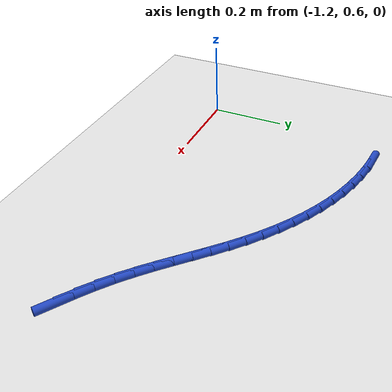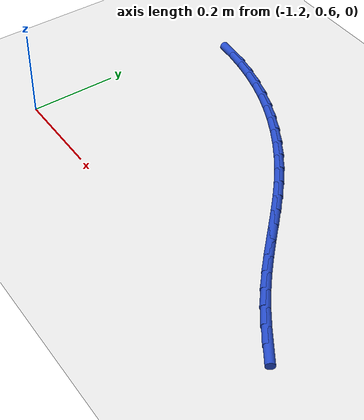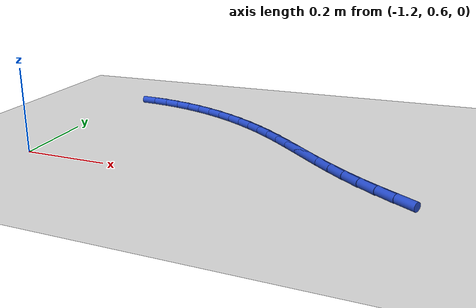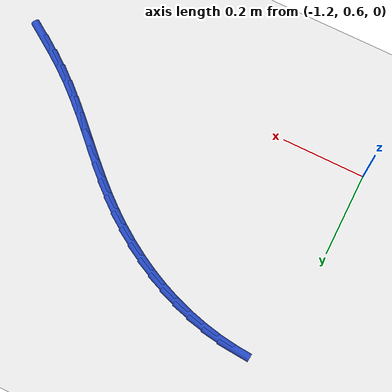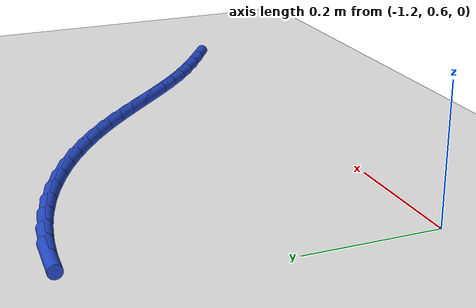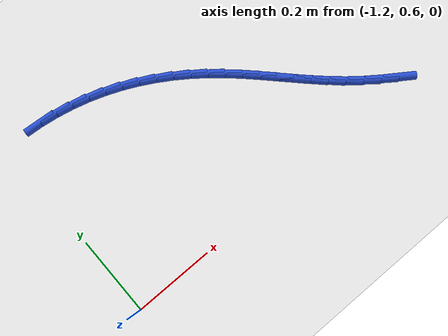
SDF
<sdf version="1.6">
 <world name="default">
  <model name="ground_plane">
   <static>1</static>
   <link name="link">
    <collision name="collision">
     <geometry><plane><normal>0 0 1</normal><size>100 100</size></plane></geometry>
     <surface><friction><ode><mu>100</mu><mu2>50</mu2></ode></friction></surface>
    </collision>
    <visual name="visual">
     <cast_shadows>0</cast_shadows>
     <geometry><plane><normal>0 0 1</normal><size>100 100</size></plane></geometry>
     <material>
      <script><uri>file://media/materials/scripts/gazebo.material</uri><name>Gazebo/WhiteGlow</name></script>
     </material>
    </visual>
   </link>
  </model>
  <model name="line">
   <link name="link_19">
    <pose>-0.3853022764426942 0.6211784546997925 0.01 0 1.57 -0.5975188175409447</pose>
    <collision name="collision">
     <geometry><cylinder><radius>0.01</radius><length>0.08</length></cylinder></geometry>
    </collision>
    <visual name="visual">
     <material>
      <script><name>Gazebo/Blue</name><uri>file://media/materials/scripts/gazebo.material</uri></script>
     </material>
     <geometry><cylinder><radius>0.01</radius><length>0.08</length></cylinder></geometry>
    </visual>
   </link>
   <link name="link_20">
    <pose>-0.42057341463554765 0.6451804815385827 0.01 0 1.57 -0.6301203983193765</pose>
    <collision name="collision">
     <geometry><cylinder><radius>0.01</radius><length>0.08</length></cylinder></geometry>
    </collision>
    <visual name="visual">
     <material>
      <script><name>Gazebo/Blue</name><uri>file://media/materials/scripts/gazebo.material</uri></script>
     </material>
     <geometry><cylinder><radius>0.01</radius><length>0.08</length></cylinder></geometry>
    </visual>
   </link>
   <link name="link_21">
    <pose>-0.45477810896866283 0.6701259359902492 0.01 0 1.57 -0.6751307637914237</pose>
    <collision name="collision">
     <geometry><cylinder><radius>0.01</radius><length>0.08</length></cylinder></geometry>
    </collision>
    <visual name="visual">
     <material>
      <script><name>Gazebo/Blue</name><uri>file://media/materials/scripts/gazebo.material</uri></script>
     </material>
     <geometry><cylinder><radius>0.01</radius><length>0.08</length></cylinder></geometry>
    </visual>
   </link>
   <link name="link_22">
    <pose>-0.4874972822513894 0.6963221987514964 0.01 0 1.57 -0.7219948559214293</pose>
    <collision name="collision">
     <geometry><cylinder><radius>0.01</radius><length>0.08</length></cylinder></geometry>
    </collision>
    <visual name="visual">
     <material>
      <script><name>Gazebo/Blue</name><uri>file://media/materials/scripts/gazebo.material</uri></script>
     </material>
     <geometry><cylinder><radius>0.01</radius><length>0.08</length></cylinder></geometry>
    </visual>
   </link>
   <link name="link_23">
    <pose>-0.5186768723717735 0.7237790544898816 0.01 0 1.57 -0.7575506675270957</pose>
    <collision name="collision">
     <geometry><cylinder><radius>0.01</radius><length>0.08</length></cylinder></geometry>
    </collision>
    <visual name="visual">
     <material>
      <script><name>Gazebo/Blue</name><uri>file://media/materials/scripts/gazebo.material</uri></script>
     </material>
     <geometry><cylinder><radius>0.01</radius><length>0.08</length></cylinder></geometry>
    </visual>
   </link>
   <link name="link_24">
    <pose>-0.5486857562644942 0.7521614665540748 0.01 0 1.57 -0.7806366892263387</pose>
    <collision name="collision">
     <geometry><cylinder><radius>0.01</radius><length>0.08</length></cylinder></geometry>
    </collision>
    <visual name="visual">
     <material>
      <script><name>Gazebo/Blue</name><uri>file://media/materials/scripts/gazebo.material</uri></script>
     </material>
     <geometry><cylinder><radius>0.01</radius><length>0.08</length></cylinder></geometry>
    </visual>
   </link>
   <link name="link_25">
    <pose>-0.5779164557598304 0.7811151206588872 0.01 0 1.57 -0.7910094370864703</pose>
    <collision name="collision">
     <geometry><cylinder><radius>0.01</radius><length>0.08</length></cylinder></geometry>
    </collision>
    <visual name="visual">
     <material>
      <script><name>Gazebo/Blue</name><uri>file://media/materials/scripts/gazebo.material</uri></script>
     </material>
     <geometry><cylinder><radius>0.01</radius><length>0.08</length></cylinder></geometry>
    </visual>
   </link>
   <link name="link_26">
    <pose>-0.606761492688061 0.8102857025191302 0.01 0 1.57 -0.7885302055430883</pose>
    <collision name="collision">
     <geometry><cylinder><radius>0.01</radius><length>0.08</length></cylinder></geometry>
    </collision>
    <visual name="visual">
     <material>
      <script><name>Gazebo/Blue</name><uri>file://media/materials/scripts/gazebo.material</uri></script>
     </material>
     <geometry><cylinder><radius>0.01</radius><length>0.08</length></cylinder></geometry>
    </visual>
   </link>
   <link name="link_27">
    <pose>-0.635613388879465 0.8393188978496147 0.01 0 1.57 -0.7731172662609904</pose>
    <collision name="collision">
     <geometry><cylinder><radius>0.01</radius><length>0.08</length></cylinder></geometry>
    </collision>
    <visual name="visual">
     <material>
      <script><name>Gazebo/Blue</name><uri>file://media/materials/scripts/gazebo.material</uri></script>
     </material>
     <geometry><cylinder><radius>0.01</radius><length>0.08</length></cylinder></geometry>
    </visual>
   </link>
   <link name="link_28">
    <pose>-0.6648646661643216 0.8678603923651526 0.01 0 1.57 -0.7447597372337205</pose>
    <collision name="collision">
     <geometry><cylinder><radius>0.01</radius><length>0.08</length></cylinder></geometry>
    </collision>
    <visual name="visual">
     <material>
      <script><name>Gazebo/Blue</name><uri>file://media/materials/scripts/gazebo.material</uri></script>
     </material>
     <geometry><cylinder><radius>0.01</radius><length>0.08</length></cylinder></geometry>
    </visual>
   </link>
   <link name="link_29">
    <pose>-0.6949078463729097 0.8955558717805542 0.01 0 1.57 -0.7042297623080148</pose>
    <collision name="collision">
     <geometry><cylinder><radius>0.01</radius><length>0.08</length></cylinder></geometry>
    </collision>
    <visual name="visual">
     <material>
      <script><name>Gazebo/Blue</name><uri>file://media/materials/scripts/gazebo.material</uri></script>
     </material>
     <geometry><cylinder><radius>0.01</radius><length>0.08</length></cylinder></geometry>
    </visual>
   </link>
   <link name="link_30">
    <pose>-0.7261103180784759 0.9220637706807228 0.01 0 1.57 -0.6579464693569888</pose>
    <collision name="collision">
     <geometry><cylinder><radius>0.01</radius><length>0.08</length></cylinder></geometry>
    </collision>
    <visual name="visual">
     <material>
      <script><name>Gazebo/Blue</name><uri>file://media/materials/scripts/gazebo.material</uri></script>
     </material>
     <geometry><cylinder><radius>0.01</radius><length>0.08</length></cylinder></geometry>
    </visual>
   </link>
   <link name="link_31">
    <pose>-0.758593405297822 0.9471673401461038 0.01 0 1.57 -0.6093549037237832</pose>
    <collision name="collision">
     <geometry><cylinder><radius>0.01</radius><length>0.08</length></cylinder></geometry>
    </collision>
    <visual name="visual">
     <material>
      <script><name>Gazebo/Blue</name><uri>file://media/materials/scripts/gazebo.material</uri></script>
     </material>
     <geometry><cylinder><radius>0.01</radius><length>0.08</length></cylinder></geometry>
    </visual>
   </link>
   <link name="link_32">
    <pose>-0.7923391443933556 0.9707204850609442 0.01 0 1.57 -0.5583814923259558</pose>
    <collision name="collision">
     <geometry><cylinder><radius>0.01</radius><length>0.08</length></cylinder></geometry>
    </collision>
    <visual name="visual">
     <material>
      <script><name>Gazebo/Blue</name><uri>file://media/materials/scripts/gazebo.material</uri></script>
     </material>
     <geometry><cylinder><radius>0.01</radius><length>0.08</length></cylinder></geometry>
    </visual>
   </link>
   <link name="link_33">
    <pose>-0.8273279865640331 0.992577914385258 0.01 0 1.57 -0.5049525181580293</pose>
    <collision name="collision">
     <geometry><cylinder><radius>0.01</radius><length>0.08</length></cylinder></geometry>
    </collision>
    <visual name="visual">
     <material>
      <script><name>Gazebo/Blue</name><uri>file://media/materials/scripts/gazebo.material</uri></script>
     </material>
     <geometry><cylinder><radius>0.01</radius><length>0.08</length></cylinder></geometry>
    </visual>
   </link>
   <link name="link_34">
    <pose>-0.8635403830088104 1.0125943370790584 0.01 0 1.57 -0.44904484457241683</pose>
    <collision name="collision">
     <geometry><cylinder><radius>0.01</radius><length>0.08</length></cylinder></geometry>
    </collision>
    <visual name="visual">
     <material>
      <script><name>Gazebo/Blue</name><uri>file://media/materials/scripts/gazebo.material</uri></script>
     </material>
     <geometry><cylinder><radius>0.01</radius><length>0.08</length></cylinder></geometry>
    </visual>
   </link>
   <link name="link_35">
    <pose>-0.9009567849266448 1.0306244621023593 0.01 0 1.57 -0.39069708512705065</pose>
    <collision name="collision">
     <geometry><cylinder><radius>0.01</radius><length>0.08</length></cylinder></geometry>
    </collision>
    <visual name="visual">
     <material>
      <script><name>Gazebo/Blue</name><uri>file://media/materials/scripts/gazebo.material</uri></script>
     </material>
     <geometry><cylinder><radius>0.01</radius><length>0.08</length></cylinder></geometry>
    </visual>
   </link>
   <link name="link_36">
    <pose>-0.9395576435164927 1.0465229984151745 0.01 0 1.57 -0.3300200909865129</pose>
    <collision name="collision">
     <geometry><cylinder><radius>0.01</radius><length>0.08</length></cylinder></geometry>
    </collision>
    <visual name="visual">
     <material>
      <script><name>Gazebo/Blue</name><uri>file://media/materials/scripts/gazebo.material</uri></script>
     </material>
     <geometry><cylinder><radius>0.01</radius><length>0.08</length></cylinder></geometry>
    </visual>
   </link>
   <link name="link_37">
    <pose>-0.9793234099773103 1.0601446549775173 0.01 0 1.57 -0.26771507477092094</pose>
    <collision name="collision">
     <geometry><cylinder><radius>0.01</radius><length>0.08</length></cylinder></geometry>
    </collision>
    <visual name="visual">
     <material>
      <script><name>Gazebo/Blue</name><uri>file://media/materials/scripts/gazebo.material</uri></script>
     </material>
     <geometry><cylinder><radius>0.01</radius><length>0.08</length></cylinder></geometry>
    </visual>
   </link>
   <link name="link_38">
    <pose>-1.020191773545227 1.0713548367638819 0.01 0 1.57 -0.20565964276784215</pose>
    <collision name="collision">
     <geometry><cylinder><radius>0.01</radius><length>0.08</length></cylinder></geometry>
    </collision>
    <visual name="visual">
     <material>
      <script><name>Gazebo/Blue</name><uri>file://media/materials/scripts/gazebo.material</uri></script>
     </material>
     <geometry><cylinder><radius>0.01</radius><length>0.08</length></cylinder></geometry>
    </visual>
   </link>
   <link name="link_39">
    <pose>-1.0619294925193994 1.0800617035629956 0.01 0 1.57 -0.14363498870059255</pose>
    <collision name="collision">
     <geometry><cylinder><radius>0.01</radius><length>0.08</length></cylinder></geometry>
    </collision>
    <visual name="visual">
     <material>
      <script><name>Gazebo/Blue</name><uri>file://media/materials/scripts/gazebo.material</uri></script>
     </material>
     <geometry><cylinder><radius>0.01</radius><length>0.08</length></cylinder></geometry>
    </visual>
   </link>
   <link name="link_40">
    <pose>-1.1042606216733475 1.0861840965612197 0.01 0 1.57 -0.08087536014928524</pose>
    <collision name="collision">
     <geometry><cylinder><radius>0.01</radius><length>0.08</length></cylinder></geometry>
    </collision>
    <visual name="visual">
     <material>
      <script><name>Gazebo/Blue</name><uri>file://media/materials/scripts/gazebo.material</uri></script>
     </material>
     <geometry><cylinder><radius>0.01</radius><length>0.08</length></cylinder></geometry>
    </visual>
   </link>
  </model>
 </world>
</sdf>
